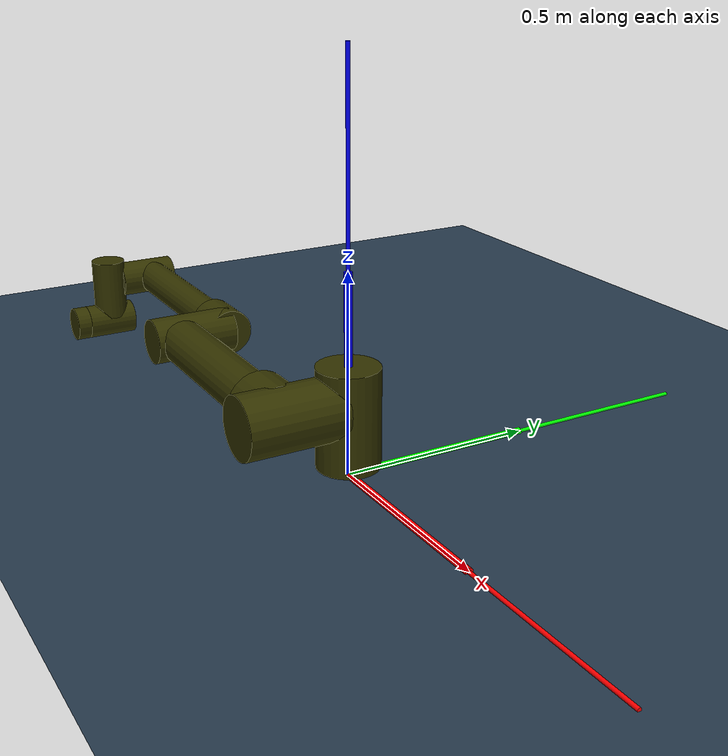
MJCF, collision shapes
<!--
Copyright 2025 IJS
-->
<mujoco model="ur10e_scene">
  <compiler angle="radian" meshdir="assets/"/>

  <option timestep="0.001" integrator="implicitfast"/>

  <size nkey="1"/>

  <visual>
    <map stiffness="700" fogstart="1" fogend="15" zfar="40" haze="1" shadowscale="0.5"/>
    <rgba haze="0.15 0.25 0.35 1"/>
  </visual>

  <statistic meansize="0.05"/>

  <default>
    <light castshadow="false"/>
    <general biastype="affine" biasprm="0 -1"/>
    <default class="ur10e_main">
      <light castshadow="true"/>
      <general biastype="none" biasprm="0 0"/>
      <default class="ur10e_robot">
        <material shininess="0.25"/>
        <joint range="-6.28319 6.28319" armature="0.1"/>
        <site size="0.001 0.005 0.005" group="4" rgba="0.5 0.5 0.5 0.3"/>
        <general ctrlrange="-6.2831 6.2831" biastype="affine" gainprm="5000" biasprm="0 -5000 -500"/>
        <default class="ur10e_size4">
          <joint damping="10"/>
          <general forcerange="-330 330"/>
        </default>
        <default class="ur10e_size3">
          <joint damping="5"/>
          <general forcerange="-150 150"/>
          <default class="ur10e_size3_limited">
            <joint range="-3.1415 3.1415"/>
            <general ctrlrange="-3.1415 3.1415"/>
          </default>
        </default>
        <default class="ur10e_size2">
          <joint damping="2"/>
          <general forcerange="-56 56"/>
        </default>
        <default class="ur10e_visual">
          <geom type="mesh" contype="0" conaffinity="0" group="2"/>
        </default>
        <default class="ur10e_collision">
          <geom type="cylinder" group="3" rgba="0.2 0.2 0 1"/>
        </default>
      </default>
    </default>
  </default>

  <asset>
    <texture type="skybox" colorspace="auto" builtin="gradient" rgb1="0.3 0.5 0.7" rgb2="0 0 0" width="512" height="3072"/>
    <texture type="2d" colorspace="auto" name="texplane" builtin="checker" mark="cross" rgb1="0.2 0.3 0.4" rgb2="0.1 0.15 0.2" markrgb="0.8 0.8 0.8" width="512" height="512"/>
    <material name="matplane" texture="texplane" texuniform="true" texrepeat="10 10" reflectance="0.3"/>
    <material name="ur10e_black" class="ur10e_robot" rgba="0.033 0.033 0.033 1"/>
    <material name="ur10e_jointgray" class="ur10e_robot" rgba="0.278 0.278 0.278 1"/>
    <material name="ur10e_linkgray" class="ur10e_robot" rgba="0.82 0.82 0.82 1"/>
    <material name="ur10e_urblue" class="ur10e_robot" rgba="0.49 0.678 0.8 1"/>
    <mesh name="ur10e_base_0" content_type="model/obj" file="ur10e/base_0.obj"/>
    <mesh name="ur10e_base_1" content_type="model/obj" file="ur10e/base_1.obj"/>
    <mesh name="ur10e_shoulder_0" content_type="model/obj" file="ur10e/shoulder_0.obj"/>
    <mesh name="ur10e_shoulder_1" content_type="model/obj" file="ur10e/shoulder_1.obj"/>
    <mesh name="ur10e_shoulder_2" content_type="model/obj" file="ur10e/shoulder_2.obj"/>
    <mesh name="ur10e_upperarm_0" content_type="model/obj" file="ur10e/upperarm_0.obj"/>
    <mesh name="ur10e_upperarm_1" content_type="model/obj" file="ur10e/upperarm_1.obj"/>
    <mesh name="ur10e_upperarm_2" content_type="model/obj" file="ur10e/upperarm_2.obj"/>
    <mesh name="ur10e_upperarm_3" content_type="model/obj" file="ur10e/upperarm_3.obj"/>
    <mesh name="ur10e_forearm_0" content_type="model/obj" file="ur10e/forearm_0.obj"/>
    <mesh name="ur10e_forearm_1" content_type="model/obj" file="ur10e/forearm_1.obj"/>
    <mesh name="ur10e_forearm_2" content_type="model/obj" file="ur10e/forearm_2.obj"/>
    <mesh name="ur10e_forearm_3" content_type="model/obj" file="ur10e/forearm_3.obj"/>
    <mesh name="ur10e_wrist1_0" content_type="model/obj" file="ur10e/wrist1_0.obj"/>
    <mesh name="ur10e_wrist1_1" content_type="model/obj" file="ur10e/wrist1_1.obj"/>
    <mesh name="ur10e_wrist1_2" content_type="model/obj" file="ur10e/wrist1_2.obj"/>
    <mesh name="ur10e_wrist2_0" content_type="model/obj" file="ur10e/wrist2_0.obj"/>
    <mesh name="ur10e_wrist2_1" content_type="model/obj" file="ur10e/wrist2_1.obj"/>
    <mesh name="ur10e_wrist2_2" content_type="model/obj" file="ur10e/wrist2_2.obj"/>
    <mesh name="ur10e_wrist3" content_type="model/obj" file="ur10e/wrist3.obj"/>
  </asset>

  <worldbody>
    <geom name="ground" size="0 0 1" type="plane" condim="1" material="matplane"/>
    <site pos="0.5 0 0" quat="0.707107 0 0.707107 0" size="0.005 0.5" type="cylinder" rgba="1 0 0 1"/>
    <site pos="0 0.5 0" quat="0.707107 0.707107 0 0" size="0.005 0.5" type="cylinder" rgba="0 1 0 1"/>
    <site pos="0 0 0.5" size="0.005 0.5" type="cylinder" rgba="0 0 1 1"/>
    <light pos="0 0 2" dir="0 0 -1" diffuse="0.4 0.4 0.4" specular="0.1 0.1 0.1"/>
    <light pos="0 0 4" dir="0 0 -1" type="directional" diffuse="0.8 0.8 0.8" specular="0.2 0.2 0.2"/>
    <body name="ur10e" childclass="ur10e_robot">
      <site name="ur10e_x" pos="0.25 0 0" quat="0.707107 0 0.707107 0" size="0.01 0.25" group="1" type="cylinder" rgba="1 0 0 1"/>
      <site name="ur10e_y" pos="0 0.25 0" quat="0.707107 0.707107 0 0" size="0.01 0.25" group="1" type="cylinder" rgba="0 1 0 1"/>
      <site name="ur10e_z" pos="0 0 0.25" size="0.01 0.25" group="1" type="cylinder" rgba="0 0 1 1"/>
      <body name="ur10e_base_link" quat="0 0 0 1">
        <inertial pos="0 0 0" quat="0.5 0.5 -0.5 0.5" mass="3.761" diaginertia="0.01125 0.00610633 0.00610633"/>
        <geom class="ur10e_visual" material="ur10e_black" mesh="ur10e_base_0"/>
        <geom class="ur10e_visual" material="ur10e_jointgray" mesh="ur10e_base_1"/>
        <geom class="ur10e_collision" size="0.078 0.125" pos="0 0 0.15"/>
        <body name="ur10e_shoulder_link" pos="0 0 0.1807">
          <inertial pos="0.021 0 0.027" mass="7.369" diaginertia="0.0314743 0.0314743 0.0218756"/>
          <joint name="ur10e_shoulder_pan_joint" class="ur10e_size4" pos="0 0 0" axis="0 0 1"/>
          <geom class="ur10e_visual" material="ur10e_urblue" mesh="ur10e_shoulder_0"/>
          <geom class="ur10e_visual" material="ur10e_black" mesh="ur10e_shoulder_1"/>
          <geom class="ur10e_visual" material="ur10e_jointgray" mesh="ur10e_shoulder_2"/>
          <body name="ur10e_upper_arm_link" pos="0 0.17615 0" quat="0.707107 0 0.707107 0">
            <inertial pos="0 -0.0227 0.2327" mass="13.051" diaginertia="0.423074 0.423074 0.0363656"/>
            <joint name="ur10e_shoulder_lift_joint" class="ur10e_size4" pos="0 0 0" axis="0 1 0"/>
            <geom class="ur10e_visual" material="ur10e_black" mesh="ur10e_upperarm_0"/>
            <geom class="ur10e_visual" material="ur10e_jointgray" mesh="ur10e_upperarm_1"/>
            <geom class="ur10e_visual" material="ur10e_urblue" mesh="ur10e_upperarm_2"/>
            <geom class="ur10e_visual" material="ur10e_linkgray" mesh="ur10e_upperarm_3"/>
            <geom class="ur10e_collision" size="0.078 0.125" pos="0 -0.02 0" quat="0.707107 0.707107 0 0"/>
            <geom class="ur10e_collision" size="0.08 0.055" pos="0 0 0.055"/>
            <geom class="ur10e_collision" size="0.06 0.24" pos="0 0 0.33"/>
            <body name="ur10e_forearm_link" pos="0 -0.137 0.6127">
              <inertial pos="0 0.0289 0.3316" mass="3.989" diaginertia="0.11059 0.11059 0.0108844"/>
              <joint name="ur10e_elbow_joint" class="ur10e_size3_limited" pos="0 0 0" axis="0 1 0"/>
              <geom class="ur10e_visual" material="ur10e_urblue" mesh="ur10e_forearm_0"/>
              <geom class="ur10e_visual" material="ur10e_black" mesh="ur10e_forearm_1"/>
              <geom class="ur10e_visual" material="ur10e_jointgray" mesh="ur10e_forearm_2"/>
              <geom class="ur10e_visual" material="ur10e_linkgray" mesh="ur10e_forearm_3"/>
              <geom class="ur10e_collision" size="0.06 0.11" pos="0 0.1 0" quat="0.707107 0.707107 0 0"/>
              <geom class="ur10e_collision" size="0.046 0.26" pos="0 0 0.3"/>
              <geom class="ur10e_collision" size="0.06 0.06" pos="0 0 0.025"/>
              <body name="ur10e_wrist_1_link" pos="0 0 0.57155" quat="0.707107 0 0.707107 0">
                <inertial pos="0 0.142 0.018" quat="0.5 0.5 -0.5 0.5" mass="2.1" diaginertia="0.0055125 0.00510825 0.00510825"/>
                <joint name="ur10e_wrist_1_joint" class="ur10e_size2" pos="0 0 0" axis="0 1 0"/>
                <geom class="ur10e_visual" material="ur10e_black" mesh="ur10e_wrist1_0"/>
                <geom class="ur10e_visual" material="ur10e_urblue" mesh="ur10e_wrist1_1"/>
                <geom class="ur10e_visual" material="ur10e_jointgray" mesh="ur10e_wrist1_2"/>
                <geom class="ur10e_collision" size="0.05 0.08" pos="0 0.02 0" quat="0.707107 0.707107 0 0"/>
                <body name="ur10e_wrist_2_link" pos="0 0.135 0">
                  <inertial pos="0 0.018 0.1129" quat="0.5 0.5 -0.5 0.5" mass="1.98" diaginertia="0.0055125 0.00510825 0.00510825"/>
                  <joint name="ur10e_wrist_2_joint" class="ur10e_size2" pos="0 0 0" axis="0 0 1"/>
                  <geom class="ur10e_visual" material="ur10e_black" mesh="ur10e_wrist2_0"/>
                  <geom class="ur10e_visual" material="ur10e_urblue" mesh="ur10e_wrist2_1"/>
                  <geom class="ur10e_visual" material="ur10e_jointgray" mesh="ur10e_wrist2_2"/>
                  <geom class="ur10e_collision" size="0.048 0.085" pos="0 0 0.02"/>
                  <geom class="ur10e_collision" size="0.048 0.07" pos="0 0.008 0.12" quat="0.707107 0.707107 0 0"/>
                  <body name="ur10e_wrist_3_link" pos="0 0 0.11985">
                    <inertial pos="0 0.0905 0" quat="6.34592e-10 0.707107 -0.707107 6.34592e-10" mass="0.615" diaginertia="0.000204525 0.000144346 0.000144346"/>
                    <joint name="ur10e_wrist_3_joint" class="ur10e_size2" pos="0 0 0" axis="0 1 0"/>
                    <geom class="ur10e_visual" material="ur10e_linkgray" mesh="ur10e_wrist3"/>
                    <geom class="ur10e_collision" size="0.048 0.02" pos="0 0.097 0" quat="0.707107 0.707107 0 0"/>
                    <body name="ur10e_flange" pos="0 0.11655 0" quat="0.707107 -0.707107 0 0">
                      <site pos="0.125 0 0" quat="0.707107 0 0.707107 0" size="0.005 0.125" group="3" type="cylinder" rgba="1 0 0 1"/>
                      <site pos="0 0.125 0" quat="0.707107 0.707107 0 0" size="0.005 0.125" group="3" type="cylinder" rgba="0 1 0 1"/>
                      <site pos="0 0 0.125" size="0.005 0.125" group="3" type="cylinder" rgba="0 0 1 1"/>
                      <site name="ur10e_flange" pos="0 0 0"/>
                      <site name="ur10e_TCP" pos="0 0 0"/>
                    </body>
                  </body>
                </body>
              </body>
            </body>
          </body>
        </body>
      </body>
    </body>
  </worldbody>

  <contact>
    <exclude body1="ur10e_base_link" body2="ur10e_upper_arm_link"/>
  </contact>

  <actuator>
    <general name="ur10e_shoulder_pan_actuator" class="ur10e_size4" joint="ur10e_shoulder_pan_joint"/>
    <general name="ur10e_shoulder_lift_actuator" class="ur10e_size4" joint="ur10e_shoulder_lift_joint"/>
    <general name="ur10e_elbow_actuator" class="ur10e_size3_limited" joint="ur10e_elbow_joint"/>
    <general name="ur10e_wrist_1_actuator" class="ur10e_size2" joint="ur10e_wrist_1_joint"/>
    <general name="ur10e_wrist_2_actuator" class="ur10e_size2" joint="ur10e_wrist_2_joint"/>
    <general name="ur10e_wrist_3_actuator" class="ur10e_size2" joint="ur10e_wrist_3_joint"/>
  </actuator>

  <sensor>
    <framepos objtype="site" objname="ur10e_TCP" name="ur10e_pos"/>
    <framequat objtype="site" objname="ur10e_TCP" name="ur10e_ori"/>
    <framelinvel objtype="site" objname="ur10e_TCP" name="ur10e_v"/>
    <frameangvel objtype="site" objname="ur10e_TCP" name="ur10e_w"/>
    <force site="ur10e_TCP" name="ur10e_force" noise="0.5"/>
    <torque site="ur10e_TCP" name="ur10e_torque" noise="0.5"/>
  </sensor>

  <keyframe>
    <key name="ur10e_home" qpos="1.5708 -1.5708 -1.5708 0 1.5708 0" ctrl="1.5708 -1.5708 -1.5708 0 1.5708 0"/>
  </keyframe>
</mujoco>
